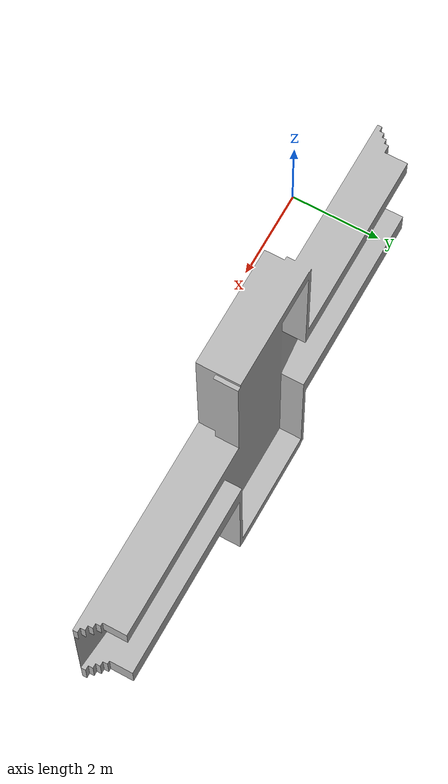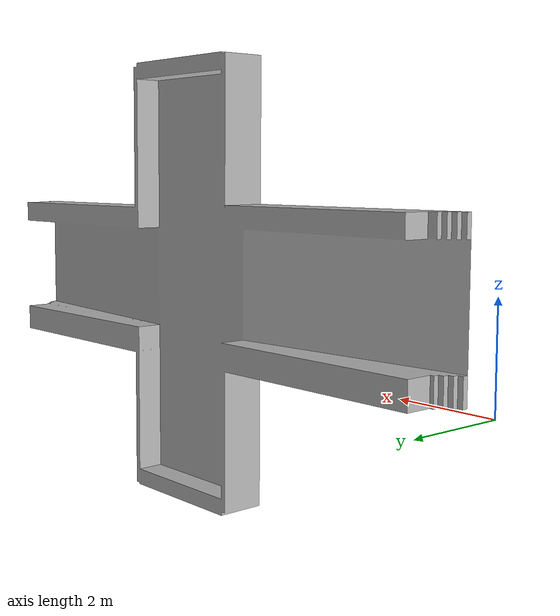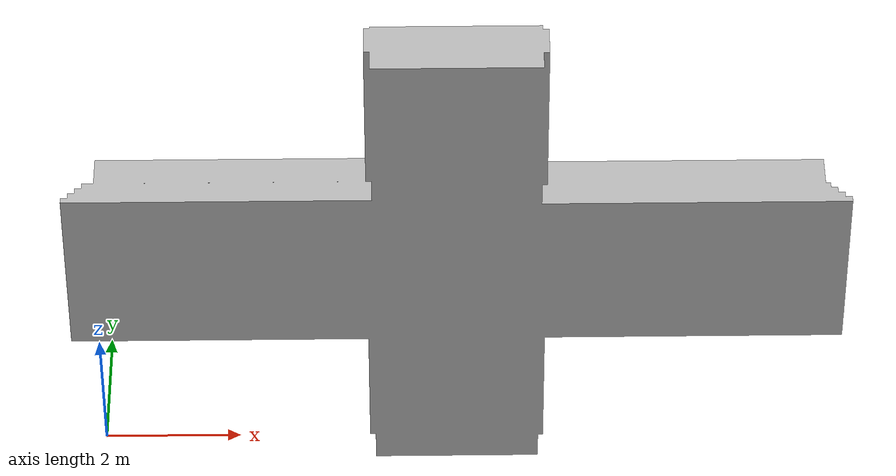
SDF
<?xml version="1.0" ?>
<sdf version="1.0">
<model name="slope">
<static>true</static>
<link name="base">
<pose>0 0 0 0 0 0</pose>
<visual name="visual">
<geometry>
<mesh>
<uri>model://slope_environment/meshes/slope_environment.stl</uri>
</mesh>
</geometry></visual>
<collision name="simple_collision">
<geometry>
<mesh>
<uri>model://slope_environment/meshes/slope_environment.stl</uri>
</mesh>
</geometry>
<surface>
        <friction>
          <ode>
            <mu>1.00</mu>
            <mu2>1.00</mu2>
          </ode>
        </friction>
      </surface>
</collision>
</link>
</model>
</sdf>
